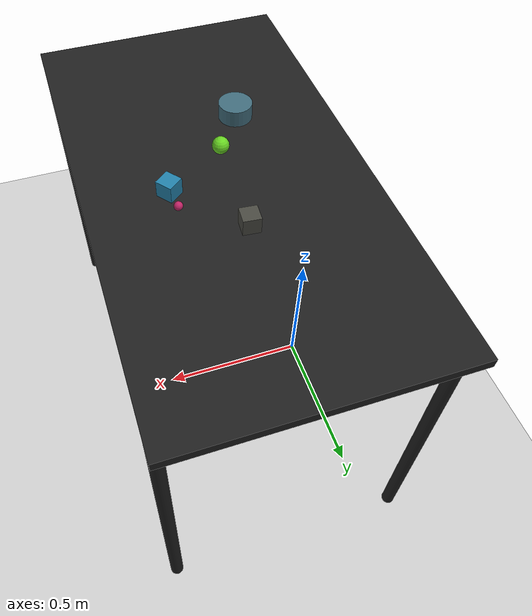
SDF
<?xml version="1.0" ?>
<sdf version="1.6">
  <world name="arm_world">
    <plugin filename="gz-sim-physics-system" name="gz::sim::systems::Physics">
      <engine>
        <filename>libgz-physics-bullet-featherstone-plugin.so</filename>
      </engine>
    </plugin>
    <plugin filename="gz-sim-user-commands-system" name="gz::sim::systems::UserCommands"/>
    <plugin filename="gz-sim-scene-broadcaster-system" name="gz::sim::systems::SceneBroadcaster"/>
    <plugin filename="gz-sim-sensors-system" name="gz::sim::systems::Sensors">
      <render_engine>ogre2</render_engine>
    </plugin>
    <gravity>0.0 0.0 -9.8</gravity>
    <scene>
      <shadows>false</shadows>
    </scene>
    <gui>
      <camera name="user_camera">
        <pose>0.75 -0.75 1.4 0 0.29 2.21</pose>
      </camera>
    </gui>
    <include>
      <uri>https://fuel.gazebosim.org/1.0/OpenRobotics/models/Sun</uri>
    </include>
    <model name="table">
      <static>true</static>
      <include>
        <uri>model://table</uri>
      </include>
      <pose>0.29 0 0 0 0 1.5708</pose>
    </model>
    <model name="ground_plane">
      <static>true</static>
      <link name="link">
        <collision name="collision">
          <geometry>
            <plane>
              <normal>0 0 1</normal>
            </plane>
          </geometry>
          <surface>
            <friction>
              <ode>
                <mu>1.0</mu>
                <mu2>1.0</mu2>
              </ode>
            </friction>
          </surface>
        </collision>
        <visual name="visual">
          <geometry>
            <plane>
              <normal>0 0 1</normal>
              <size>100 100</size>
            </plane>
          </geometry>
          <material>
            <ambient>0.8 0.8 0.8 1</ambient>
            <diffuse>0.8 0.8 0.8 1</diffuse>
            <specular>0.8 0.8 0.8 1</specular>
          </material>
        </visual>
      </link>
    </model>
    <model name="sphere_s_0">
      <pose>0.448 0.105 1.05 0 0 3.71</pose>
      <link name="sphere_s_0_link">
        <collision name="sphere_s_0_collision">
          <geometry>
            <sphere>
              <radius>0.0125</radius>
            </sphere>
          </geometry>
        </collision>
        <visual name="sphere_s_0_visual">
          <geometry>
            <sphere>
              <radius>0.0125</radius>
            </sphere>
          </geometry>
          <material>
            <ambient>0.74 0.13 0.39 1</ambient>
            <diffuse>0.74 0.13 0.39 1</diffuse>
          </material>
        </visual>
        <velocity_decay>
          <linear>1</linear>
          <angular>1</angular>
        </velocity_decay>
      </link>
    </model>
    <model name="cube_m_1">
      <pose>0.288 0.21 1.05 0 0 4.63</pose>
      <link name="cube_m_1_link">
        <collision name="cube_m_1_collision">
          <geometry>
            <box>
              <size>0.05 0.05 0.05</size>
            </box>
          </geometry>
        </collision>
        <visual name="cube_m_1_visual">
          <geometry>
            <box>
              <size>0.05 0.05 0.05</size>
            </box>
          </geometry>
          <material>
            <ambient>0.28 0.28 0.25 1</ambient>
            <diffuse>0.28 0.28 0.25 1</diffuse>
          </material>
        </visual>
        <velocity_decay>
          <linear>1</linear>
          <angular>1</angular>
        </velocity_decay>
      </link>
    </model>
    <model name="cube_m_2">
      <pose>0.453 0.03 1.05 0 0 0.67</pose>
      <link name="cube_m_2_link">
        <collision name="cube_m_2_collision">
          <geometry>
            <box>
              <size>0.05 0.05 0.05</size>
            </box>
          </geometry>
        </collision>
        <visual name="cube_m_2_visual">
          <geometry>
            <box>
              <size>0.05 0.05 0.05</size>
            </box>
          </geometry>
          <material>
            <ambient>0.13 0.5 0.66 1</ambient>
            <diffuse>0.13 0.5 0.66 1</diffuse>
          </material>
        </visual>
        <velocity_decay>
          <linear>1</linear>
          <angular>1</angular>
        </velocity_decay>
      </link>
    </model>
    <model name="cylinder_l_3">
      <pose>0.181 -0.229 1.05 0 0 6.18</pose>
      <link name="cylinder_l_3_link">
        <collision name="cylinder_l_3_collision">
          <geometry>
            <cylinder>
              <radius>0.05</radius>
              <length>0.05</length>
            </cylinder>
          </geometry>
        </collision>
        <visual name="cylinder_l_3_visual">
          <geometry>
            <cylinder>
              <radius>0.05</radius>
              <length>0.05</length>
            </cylinder>
          </geometry>
          <material>
            <ambient>0.25 0.42 0.48 1</ambient>
            <diffuse>0.25 0.42 0.48 1</diffuse>
          </material>
        </visual>
        <velocity_decay>
          <linear>1</linear>
          <angular>1</angular>
        </velocity_decay>
      </link>
    </model>
    <model name="sphere_m_4">
      <pose>0.271 -0.089 1.05 0 0 1.85</pose>
      <link name="sphere_m_4_link">
        <collision name="sphere_m_4_collision">
          <geometry>
            <sphere>
              <radius>0.025</radius>
            </sphere>
          </geometry>
        </collision>
        <visual name="sphere_m_4_visual">
          <geometry>
            <sphere>
              <radius>0.025</radius>
            </sphere>
          </geometry>
          <material>
            <ambient>0.4 0.82 0.13 1</ambient>
            <diffuse>0.4 0.82 0.13 1</diffuse>
          </material>
        </visual>
        <velocity_decay>
          <linear>1</linear>
          <angular>1</angular>
        </velocity_decay>
      </link>
    </model>
  </world>
</sdf>

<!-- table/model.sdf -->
<sdf version="1.5">
  <model name="table">
    <static>true</static>
    <link name="link">
      <collision name="surface">
        <pose>0 0 1.0 0 0 0</pose>
        <geometry>
          <box>
            <size>1.5 0.8 0.03</size>
          </box>
        </geometry>
        <surface>
          <friction>
            <ode>
              <mu>0.6</mu>
              <mu2>0.6</mu2>
            </ode>
          </friction>
        </surface>
      </collision>
      <visual name="surface">
        <pose>0 0 1.0 0 0 0</pose>
        <geometry>
          <box>
            <size>1.5 0.8 0.03</size>
          </box>
        </geometry>
        <material>
          <script>
            <uri>file://media/materials/scripts/gazebo.material</uri>
            <name>Gazebo/Black</name>
          </script>
        </material>
      </visual>
      <collision name="front_left_leg">
        <pose>0.68 0.38 0.5 0 0 0</pose>
        <geometry>
          <cylinder>
            <radius>0.02</radius>
            <length>1.0</length>
          </cylinder>
        </geometry>
      </collision>
      <visual name="front_left_leg">
        <pose>0.68 0.38 0.5 0 0 0</pose>
        <geometry>
          <cylinder>
            <radius>0.02</radius>
            <length>1.0</length>
          </cylinder>
        </geometry>
        <material>
          <script>
            <uri>file://media/materials/scripts/gazebo.material</uri>
            <name>Gazebo/Black</name>
          </script>
        </material>
      </visual>
      <collision name="front_right_leg">
        <pose>0.68 -0.38 0.5 0 0 0</pose>
        <geometry>
          <cylinder>
            <radius>0.02</radius>
            <length>1.0</length>
          </cylinder>
        </geometry>
      </collision>
      <visual name="front_right_leg">
        <pose>0.68 -0.38 0.5 0 0 0</pose>
        <geometry>
          <cylinder>
            <radius>0.02</radius>
            <length>1.0</length>
          </cylinder>
        </geometry>
        <material>
          <script>
            <uri>file://media/materials/scripts/gazebo.material</uri>
            <name>Gazebo/Black</name>
          </script>
        </material>
      </visual>
      <collision name="back_right_leg">
        <pose>-0.68 -0.38 0.5 0 0 0</pose>
        <geometry>
          <cylinder>
            <radius>0.02</radius>
            <length>1.0</length>
          </cylinder>
        </geometry>
      </collision>
      <visual name="back_right_leg">
        <pose>-0.68 -0.38 0.5 0 0 0</pose>
        <geometry>
          <cylinder>
            <radius>0.02</radius>
            <length>1.0</length>
          </cylinder>
        </geometry>
        <material>
          <script>
            <uri>file://media/materials/scripts/gazebo.material</uri>
            <name>Gazebo/Black</name>
          </script>
        </material>
      </visual>
      <collision name="back_left_leg">
        <pose>-0.68 0.38 0.5 0 0 0</pose>
        <geometry>
          <cylinder>
            <radius>0.02</radius>
            <length>1.0</length>
          </cylinder>
        </geometry>
      </collision>
      <visual name="back_left_leg">
        <pose>-0.68 0.38 0.5 0 0 0</pose>
        <geometry>
          <cylinder>
            <radius>0.02</radius>
            <length>1.0</length>
          </cylinder>
        </geometry>
        <material>
          <script>
            <uri>file://media/materials/scripts/gazebo.material</uri>
            <name>Gazebo/Black</name>
          </script>
        </material>
      </visual>
    </link>
  </model>
</sdf>
